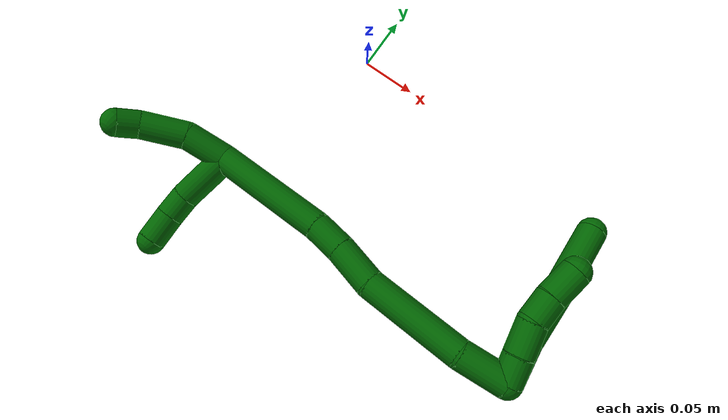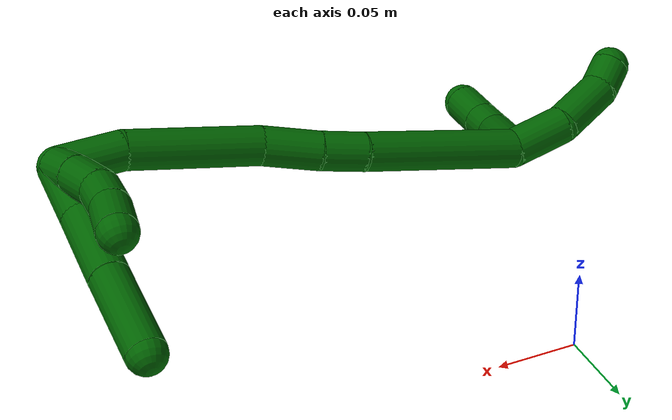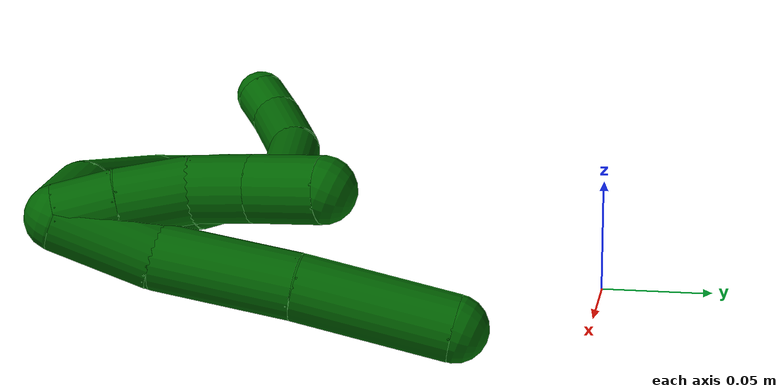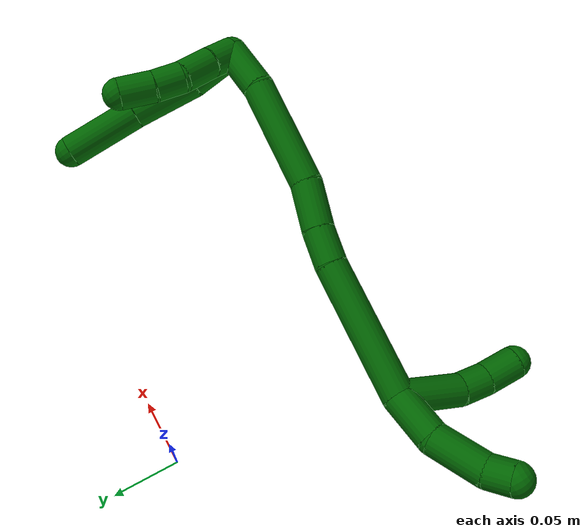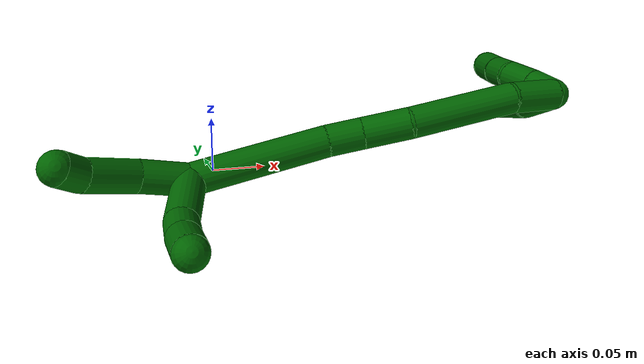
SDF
<sdf version="1.7">
 <world name="default">
  <model name="6">
   <static>0</static>
   <link name="6">
    <collision name="collision-cylinder-e_1_2_8">
     <pose>-0.001593 8.3e-05 -0.019218 -3.13725 -0.082727 3.03672</pose>
     <geometry><cylinder><radius>0.0125</radius><length>0.038568</length></cylinder></geometry>
     <surface>
      <friction><ode><mu>1.16</mu><mu2>1.16</mu2><slip1>0</slip1><slip2>0</slip2></ode></friction>
      <contact><ode><kp>1e+06</kp><kd>1</kd><max_vel>0</max_vel><min_depth>0.001</min_depth></ode></contact>
     </surface>
    </collision>
    <visual name="visual-cylinder-e_1_2_8">
     <pose>-0.001593 8.3e-05 -0.019218 -3.13725 -0.082727 3.03672</pose>
     <geometry><cylinder><radius>0.0125</radius><length>0.038568</length></cylinder></geometry>
     <material><ambient>0 0.392157 0.003922 1</ambient></material>
    </visual>
    <collision name="collision-cylinder-e_2_8_9">
     <pose>-0.00563 0.00544 -0.064148 -2.93931 -0.09281 0.858263</pose>
     <geometry><cylinder><radius>0.0125</radius><length>0.052723</length></cylinder></geometry>
     <surface>
      <friction><ode><mu>1.16</mu><mu2>1.16</mu2><slip1>0</slip1><slip2>0</slip2></ode></friction>
      <contact><ode><kp>1e+06</kp><kd>1</kd><max_vel>0</max_vel><min_depth>0.001</min_depth></ode></contact>
     </surface>
    </collision>
    <visual name="visual-cylinder-e_2_8_9">
     <pose>-0.00563 0.00544 -0.064148 -2.93931 -0.09281 0.858263</pose>
     <geometry><cylinder><radius>0.0125</radius><length>0.052723</length></cylinder></geometry>
     <material><ambient>0 0.392157 0.003922 1</ambient></material>
    </visual>
    <collision name="collision-cylinder-e_3_9_6">
     <pose>-0.011102 0.014815 -0.118769 -3.00067 -0.103375 1.26505</pose>
     <geometry><cylinder><radius>0.0125</radius><length>0.05871</length></cylinder></geometry>
     <surface>
      <friction><ode><mu>1.16</mu><mu2>1.16</mu2><slip1>0</slip1><slip2>0</slip2></ode></friction>
      <contact><ode><kp>1e+06</kp><kd>1</kd><max_vel>0</max_vel><min_depth>0.001</min_depth></ode></contact>
     </surface>
    </collision>
    <visual name="visual-cylinder-e_3_9_6">
     <pose>-0.011102 0.014815 -0.118769 -3.00067 -0.103375 1.26505</pose>
     <geometry><cylinder><radius>0.0125</radius><length>0.05871</length></cylinder></geometry>
     <material><ambient>0 0.392157 0.003922 1</ambient></material>
    </visual>
    <collision name="collision-cylinder-e_1_2_10">
     <pose>-0.004991 0.005079 -0.008864 -2.62126 -0.45442 1.4303</pose>
     <geometry><cylinder><radius>0.0125</radius><length>0.022739</length></cylinder></geometry>
     <surface>
      <friction><ode><mu>1.16</mu><mu2>1.16</mu2><slip1>0</slip1><slip2>0</slip2></ode></friction>
      <contact><ode><kp>1e+06</kp><kd>1</kd><max_vel>0</max_vel><min_depth>0.001</min_depth></ode></contact>
     </surface>
    </collision>
    <visual name="visual-cylinder-e_1_2_10">
     <pose>-0.004991 0.005079 -0.008864 -2.62126 -0.45442 1.4303</pose>
     <geometry><cylinder><radius>0.0125</radius><length>0.022739</length></cylinder></geometry>
     <material><ambient>0 0.392157 0.003922 1</ambient></material>
    </visual>
    <collision name="collision-cylinder-e_2_10_11">
     <pose>-0.015594 0.01554 -0.028879 -2.6919 -0.425603 1.51396</pose>
     <geometry><cylinder><radius>0.0125</radius><length>0.02719</length></cylinder></geometry>
     <surface>
      <friction><ode><mu>1.16</mu><mu2>1.16</mu2><slip1>0</slip1><slip2>0</slip2></ode></friction>
      <contact><ode><kp>1e+06</kp><kd>1</kd><max_vel>0</max_vel><min_depth>0.001</min_depth></ode></contact>
     </surface>
    </collision>
    <visual name="visual-cylinder-e_2_10_11">
     <pose>-0.015594 0.01554 -0.028879 -2.6919 -0.425603 1.51396</pose>
     <geometry><cylinder><radius>0.0125</radius><length>0.02719</length></cylinder></geometry>
     <material><ambient>0 0.392157 0.003922 1</ambient></material>
    </visual>
    <collision name="collision-cylinder-e_3_11_12">
     <pose>-0.022799 0.025631 -0.050281 -2.71108 -0.140171 0.621352</pose>
     <geometry><cylinder><radius>0.0125</radius><length>0.022784</length></cylinder></geometry>
     <surface>
      <friction><ode><mu>1.16</mu><mu2>1.16</mu2><slip1>0</slip1><slip2>0</slip2></ode></friction>
      <contact><ode><kp>1e+06</kp><kd>1</kd><max_vel>0</max_vel><min_depth>0.001</min_depth></ode></contact>
     </surface>
    </collision>
    <visual name="visual-cylinder-e_3_11_12">
     <pose>-0.022799 0.025631 -0.050281 -2.71108 -0.140171 0.621352</pose>
     <geometry><cylinder><radius>0.0125</radius><length>0.022784</length></cylinder></geometry>
     <material><ambient>0 0.392157 0.003922 1</ambient></material>
    </visual>
    <collision name="collision-cylinder-e_4_12_5">
     <pose>-0.02467 0.036536 -0.072683 -2.66995 -0.02049 0.085223</pose>
     <geometry><cylinder><radius>0.0125</radius><length>0.027286</length></cylinder></geometry>
     <surface>
      <friction><ode><mu>1.16</mu><mu2>1.16</mu2><slip1>0</slip1><slip2>0</slip2></ode></friction>
      <contact><ode><kp>1e+06</kp><kd>1</kd><max_vel>0</max_vel><min_depth>0.001</min_depth></ode></contact>
     </surface>
    </collision>
    <visual name="visual-cylinder-e_4_12_5">
     <pose>-0.02467 0.036536 -0.072683 -2.66995 -0.02049 0.085223</pose>
     <geometry><cylinder><radius>0.0125</radius><length>0.027286</length></cylinder></geometry>
     <material><ambient>0 0.392157 0.003922 1</ambient></material>
    </visual>
    <collision name="collision-cylinder-e_1_2_13">
     <pose>-0.018602 -0.008175 0.001947 1.33704 -1.14647 -0.943037</pose>
     <geometry><cylinder><radius>0.0125</radius><length>0.040825</length></cylinder></geometry>
     <surface>
      <friction><ode><mu>1.16</mu><mu2>1.16</mu2><slip1>0</slip1><slip2>0</slip2></ode></friction>
      <contact><ode><kp>1e+06</kp><kd>1</kd><max_vel>0</max_vel><min_depth>0.001</min_depth></ode></contact>
     </surface>
    </collision>
    <visual name="visual-cylinder-e_1_2_13">
     <pose>-0.018602 -0.008175 0.001947 1.33704 -1.14647 -0.943037</pose>
     <geometry><cylinder><radius>0.0125</radius><length>0.040825</length></cylinder></geometry>
     <material><ambient>0 0.392157 0.003922 1</ambient></material>
    </visual>
    <collision name="collision-cylinder-e_2_13_14">
     <pose>-0.074662 -0.038076 0.000139 1.74191 -1.03882 -1.19306</pose>
     <geometry><cylinder><radius>0.0125</radius><length>0.086929</length></cylinder></geometry>
     <surface>
      <friction><ode><mu>1.16</mu><mu2>1.16</mu2><slip1>0</slip1><slip2>0</slip2></ode></friction>
      <contact><ode><kp>1e+06</kp><kd>1</kd><max_vel>0</max_vel><min_depth>0.001</min_depth></ode></contact>
     </surface>
    </collision>
    <visual name="visual-cylinder-e_2_13_14">
     <pose>-0.074662 -0.038076 0.000139 1.74191 -1.03882 -1.19306</pose>
     <geometry><cylinder><radius>0.0125</radius><length>0.086929</length></cylinder></geometry>
     <material><ambient>0 0.392157 0.003922 1</ambient></material>
    </visual>
    <collision name="collision-cylinder-e_3_14_15">
     <pose>-0.128194 -0.067953 -0.008837 2.14051 -1.02865 -1.60325</pose>
     <geometry><cylinder><radius>0.0125</radius><length>0.037529</length></cylinder></geometry>
     <surface>
      <friction><ode><mu>1.16</mu><mu2>1.16</mu2><slip1>0</slip1><slip2>0</slip2></ode></friction>
      <contact><ode><kp>1e+06</kp><kd>1</kd><max_vel>0</max_vel><min_depth>0.001</min_depth></ode></contact>
     </surface>
    </collision>
    <visual name="visual-cylinder-e_3_14_15">
     <pose>-0.128194 -0.067953 -0.008837 2.14051 -1.02865 -1.60325</pose>
     <geometry><cylinder><radius>0.0125</radius><length>0.037529</length></cylinder></geometry>
     <material><ambient>0 0.392157 0.003922 1</ambient></material>
    </visual>
    <collision name="collision-cylinder-e_4_15_16">
     <pose>-0.156622 -0.082618 -0.016672 1.95228 -1.05431 -1.42132</pose>
     <geometry><cylinder><radius>0.0125</radius><length>0.028417</length></cylinder></geometry>
     <surface>
      <friction><ode><mu>1.16</mu><mu2>1.16</mu2><slip1>0</slip1><slip2>0</slip2></ode></friction>
      <contact><ode><kp>1e+06</kp><kd>1</kd><max_vel>0</max_vel><min_depth>0.001</min_depth></ode></contact>
     </surface>
    </collision>
    <visual name="visual-cylinder-e_4_15_16">
     <pose>-0.156622 -0.082618 -0.016672 1.95228 -1.05431 -1.42132</pose>
     <geometry><cylinder><radius>0.0125</radius><length>0.028417</length></cylinder></geometry>
     <material><ambient>0 0.392157 0.003922 1</ambient></material>
    </visual>
    <collision name="collision-cylinder-e_5_16_1">
     <pose>-0.213933 -0.117196 -0.02332 1.71361 -1.0081 -1.13374</pose>
     <geometry><cylinder><radius>0.0125</radius><length>0.1063</length></cylinder></geometry>
     <surface>
      <friction><ode><mu>1.16</mu><mu2>1.16</mu2><slip1>0</slip1><slip2>0</slip2></ode></friction>
      <contact><ode><kp>1e+06</kp><kd>1</kd><max_vel>0</max_vel><min_depth>0.001</min_depth></ode></contact>
     </surface>
    </collision>
    <visual name="visual-cylinder-e_5_16_1">
     <pose>-0.213933 -0.117196 -0.02332 1.71361 -1.0081 -1.13374</pose>
     <geometry><cylinder><radius>0.0125</radius><length>0.1063</length></cylinder></geometry>
     <material><ambient>0 0.392157 0.003922 1</ambient></material>
    </visual>
    <collision name="collision-cylinder-e_1_1_17">
     <pose>-0.258196 -0.162723 -0.009039 0.761509 0.027373 0.010958</pose>
     <geometry><cylinder><radius>0.0125</radius><length>0.050631</length></cylinder></geometry>
     <surface>
      <friction><ode><mu>1.16</mu><mu2>1.16</mu2><slip1>0</slip1><slip2>0</slip2></ode></friction>
      <contact><ode><kp>1e+06</kp><kd>1</kd><max_vel>0</max_vel><min_depth>0.001</min_depth></ode></contact>
     </surface>
    </collision>
    <visual name="visual-cylinder-e_1_1_17">
     <pose>-0.258196 -0.162723 -0.009039 0.761509 0.027373 0.010958</pose>
     <geometry><cylinder><radius>0.0125</radius><length>0.050631</length></cylinder></geometry>
     <material><ambient>0 0.392157 0.003922 1</ambient></material>
    </visual>
    <collision name="collision-cylinder-e_2_17_18">
     <pose>-0.255813 -0.185533 0.018959 0.504746 0.151586 0.03916</pose>
     <geometry><cylinder><radius>0.0125</radius><length>0.022377</length></cylinder></geometry>
     <surface>
      <friction><ode><mu>1.16</mu><mu2>1.16</mu2><slip1>0</slip1><slip2>0</slip2></ode></friction>
      <contact><ode><kp>1e+06</kp><kd>1</kd><max_vel>0</max_vel><min_depth>0.001</min_depth></ode></contact>
     </surface>
    </collision>
    <visual name="visual-cylinder-e_2_17_18">
     <pose>-0.255813 -0.185533 0.018959 0.504746 0.151586 0.03916</pose>
     <geometry><cylinder><radius>0.0125</radius><length>0.022377</length></cylinder></geometry>
     <material><ambient>0 0.392157 0.003922 1</ambient></material>
    </visual>
    <collision name="collision-cylinder-e_3_18_4">
     <pose>-0.251545 -0.195597 0.041019 0.363965 0.192264 0.035486</pose>
     <geometry><cylinder><radius>0.0125</radius><length>0.026992</length></cylinder></geometry>
     <surface>
      <friction><ode><mu>1.16</mu><mu2>1.16</mu2><slip1>0</slip1><slip2>0</slip2></ode></friction>
      <contact><ode><kp>1e+06</kp><kd>1</kd><max_vel>0</max_vel><min_depth>0.001</min_depth></ode></contact>
     </surface>
    </collision>
    <visual name="visual-cylinder-e_3_18_4">
     <pose>-0.251545 -0.195597 0.041019 0.363965 0.192264 0.035486</pose>
     <geometry><cylinder><radius>0.0125</radius><length>0.026992</length></cylinder></geometry>
     <material><ambient>0 0.392157 0.003922 1</ambient></material>
    </visual>
    <collision name="collision-cylinder-e_1_1_19">
     <pose>-0.27714 -0.149744 -0.023842 0.906089 -1.26832 -0.687664</pose>
     <geometry><cylinder><radius>0.0125</radius><length>0.038239</length></cylinder></geometry>
     <surface>
      <friction><ode><mu>1.16</mu><mu2>1.16</mu2><slip1>0</slip1><slip2>0</slip2></ode></friction>
      <contact><ode><kp>1e+06</kp><kd>1</kd><max_vel>0</max_vel><min_depth>0.001</min_depth></ode></contact>
     </surface>
    </collision>
    <visual name="visual-cylinder-e_1_1_19">
     <pose>-0.27714 -0.149744 -0.023842 0.906089 -1.26832 -0.687664</pose>
     <geometry><cylinder><radius>0.0125</radius><length>0.038239</length></cylinder></geometry>
     <material><ambient>0 0.392157 0.003922 1</ambient></material>
    </visual>
    <collision name="collision-cylinder-e_2_19_20">
     <pose>-0.312382 -0.160377 -0.010319 0.55092 -0.965834 -0.294254</pose>
     <geometry><cylinder><radius>0.0125</radius><length>0.041312</length></cylinder></geometry>
     <surface>
      <friction><ode><mu>1.16</mu><mu2>1.16</mu2><slip1>0</slip1><slip2>0</slip2></ode></friction>
      <contact><ode><kp>1e+06</kp><kd>1</kd><max_vel>0</max_vel><min_depth>0.001</min_depth></ode></contact>
     </surface>
    </collision>
    <visual name="visual-cylinder-e_2_19_20">
     <pose>-0.312382 -0.160377 -0.010319 0.55092 -0.965834 -0.294254</pose>
     <geometry><cylinder><radius>0.0125</radius><length>0.041312</length></cylinder></geometry>
     <material><ambient>0 0.392157 0.003922 1</ambient></material>
    </visual>
    <collision name="collision-cylinder-e_3_20_3">
     <pose>-0.336624 -0.167392 0.006845 0.120336 -0.788463 -0.050111</pose>
     <geometry><cylinder><radius>0.0125</radius><length>0.020448</length></cylinder></geometry>
     <surface>
      <friction><ode><mu>1.16</mu><mu2>1.16</mu2><slip1>0</slip1><slip2>0</slip2></ode></friction>
      <contact><ode><kp>1e+06</kp><kd>1</kd><max_vel>0</max_vel><min_depth>0.001</min_depth></ode></contact>
     </surface>
    </collision>
    <visual name="visual-cylinder-e_3_20_3">
     <pose>-0.336624 -0.167392 0.006845 0.120336 -0.788463 -0.050111</pose>
     <geometry><cylinder><radius>0.0125</radius><length>0.020448</length></cylinder></geometry>
     <material><ambient>0 0.392157 0.003922 1</ambient></material>
    </visual>
    <collision name="collision-sphere-3">
     <pose>-0.343876 -0.168257 0.014001 0 -0 0</pose>
     <geometry><sphere><radius>0.0125</radius></sphere></geometry>
     <surface>
      <friction><ode><mu>1.16</mu><mu2>1.16</mu2><slip1>0</slip1><slip2>0</slip2></ode></friction>
      <contact><ode><kp>1e+06</kp><kd>1</kd><max_vel>0</max_vel><min_depth>0.001</min_depth></ode></contact>
     </surface>
    </collision>
    <visual name="visual-sphere-3">
     <pose>-0.343876 -0.168257 0.014001 0 -0 0</pose>
     <geometry><sphere><radius>0.0125</radius></sphere></geometry>
     <material><ambient>0 0.392157 0.003922 1</ambient></material>
    </visual>
    <collision name="collision-sphere-20">
     <pose>-0.329372 -0.166526 -0.00031 0 -0 0</pose>
     <geometry><sphere><radius>0.0125</radius></sphere></geometry>
     <surface>
      <friction><ode><mu>1.16</mu><mu2>1.16</mu2><slip1>0</slip1><slip2>0</slip2></ode></friction>
      <contact><ode><kp>1e+06</kp><kd>1</kd><max_vel>0</max_vel><min_depth>0.001</min_depth></ode></contact>
     </surface>
    </collision>
    <visual name="visual-sphere-20">
     <pose>-0.329372 -0.166526 -0.00031 0 -0 0</pose>
     <geometry><sphere><radius>0.0125</radius></sphere></geometry>
     <material><ambient>0 0.392157 0.003922 1</ambient></material>
    </visual>
    <collision name="collision-sphere-19">
     <pose>-0.295392 -0.154227 -0.020329 0 -0 0</pose>
     <geometry><sphere><radius>0.0125</radius></sphere></geometry>
     <surface>
      <friction><ode><mu>1.16</mu><mu2>1.16</mu2><slip1>0</slip1><slip2>0</slip2></ode></friction>
      <contact><ode><kp>1e+06</kp><kd>1</kd><max_vel>0</max_vel><min_depth>0.001</min_depth></ode></contact>
     </surface>
    </collision>
    <visual name="visual-sphere-19">
     <pose>-0.295392 -0.154227 -0.020329 0 -0 0</pose>
     <geometry><sphere><radius>0.0125</radius></sphere></geometry>
     <material><ambient>0 0.392157 0.003922 1</ambient></material>
    </visual>
    <collision name="collision-sphere-11">
     <pose>-0.021207 0.020923 -0.04003 0 -0 0</pose>
     <geometry><sphere><radius>0.0125</radius></sphere></geometry>
     <surface>
      <friction><ode><mu>1.16</mu><mu2>1.16</mu2><slip1>0</slip1><slip2>0</slip2></ode></friction>
      <contact><ode><kp>1e+06</kp><kd>1</kd><max_vel>0</max_vel><min_depth>0.001</min_depth></ode></contact>
     </surface>
    </collision>
    <visual name="visual-sphere-11">
     <pose>-0.021207 0.020923 -0.04003 0 -0 0</pose>
     <geometry><sphere><radius>0.0125</radius></sphere></geometry>
     <material><ambient>0 0.392157 0.003922 1</ambient></material>
    </visual>
    <collision name="collision-sphere-10">
     <pose>-0.009981 0.010158 -0.017727 0 -0 0</pose>
     <geometry><sphere><radius>0.0125</radius></sphere></geometry>
     <surface>
      <friction><ode><mu>1.16</mu><mu2>1.16</mu2><slip1>0</slip1><slip2>0</slip2></ode></friction>
      <contact><ode><kp>1e+06</kp><kd>1</kd><max_vel>0</max_vel><min_depth>0.001</min_depth></ode></contact>
     </surface>
    </collision>
    <visual name="visual-sphere-10">
     <pose>-0.009981 0.010158 -0.017727 0 -0 0</pose>
     <geometry><sphere><radius>0.0125</radius></sphere></geometry>
     <material><ambient>0 0.392157 0.003922 1</ambient></material>
    </visual>
    <collision name="collision-sphere-6">
     <pose>-0.014131 0.018916 -0.147678 0 -0 0</pose>
     <geometry><sphere><radius>0.0125</radius></sphere></geometry>
     <surface>
      <friction><ode><mu>1.16</mu><mu2>1.16</mu2><slip1>0</slip1><slip2>0</slip2></ode></friction>
      <contact><ode><kp>1e+06</kp><kd>1</kd><max_vel>0</max_vel><min_depth>0.001</min_depth></ode></contact>
     </surface>
    </collision>
    <visual name="visual-sphere-6">
     <pose>-0.014131 0.018916 -0.147678 0 -0 0</pose>
     <geometry><sphere><radius>0.0125</radius></sphere></geometry>
     <material><ambient>0 0.392157 0.003922 1</ambient></material>
    </visual>
    <collision name="collision-sphere-9">
     <pose>-0.008073 0.010714 -0.089861 0 -0 0</pose>
     <geometry><sphere><radius>0.0125</radius></sphere></geometry>
     <surface>
      <friction><ode><mu>1.16</mu><mu2>1.16</mu2><slip1>0</slip1><slip2>0</slip2></ode></friction>
      <contact><ode><kp>1e+06</kp><kd>1</kd><max_vel>0</max_vel><min_depth>0.001</min_depth></ode></contact>
     </surface>
    </collision>
    <visual name="visual-sphere-9">
     <pose>-0.008073 0.010714 -0.089861 0 -0 0</pose>
     <geometry><sphere><radius>0.0125</radius></sphere></geometry>
     <material><ambient>0 0.392157 0.003922 1</ambient></material>
    </visual>
    <collision name="collision-sphere-2">
     <geometry><sphere><radius>0.0125</radius></sphere></geometry>
     <surface>
      <friction><ode><mu>1.16</mu><mu2>1.16</mu2><slip1>0</slip1><slip2>0</slip2></ode></friction>
      <contact><ode><kp>1e+06</kp><kd>1</kd><max_vel>0</max_vel><min_depth>0.001</min_depth></ode></contact>
     </surface>
    </collision>
    <visual name="visual-sphere-2">
     <geometry><sphere><radius>0.0125</radius></sphere></geometry>
     <material><ambient>0 0.392157 0.003922 1</ambient></material>
    </visual>
    <collision name="collision-sphere-8">
     <pose>-0.003187 0.000167 -0.038435 0 -0 0</pose>
     <geometry><sphere><radius>0.0125</radius></sphere></geometry>
     <surface>
      <friction><ode><mu>1.16</mu><mu2>1.16</mu2><slip1>0</slip1><slip2>0</slip2></ode></friction>
      <contact><ode><kp>1e+06</kp><kd>1</kd><max_vel>0</max_vel><min_depth>0.001</min_depth></ode></contact>
     </surface>
    </collision>
    <visual name="visual-sphere-8">
     <pose>-0.003187 0.000167 -0.038435 0 -0 0</pose>
     <geometry><sphere><radius>0.0125</radius></sphere></geometry>
     <material><ambient>0 0.392157 0.003922 1</ambient></material>
    </visual>
    <collision name="collision-sphere-12">
     <pose>-0.02439 0.030338 -0.060532 0 -0 0</pose>
     <geometry><sphere><radius>0.0125</radius></sphere></geometry>
     <surface>
      <friction><ode><mu>1.16</mu><mu2>1.16</mu2><slip1>0</slip1><slip2>0</slip2></ode></friction>
      <contact><ode><kp>1e+06</kp><kd>1</kd><max_vel>0</max_vel><min_depth>0.001</min_depth></ode></contact>
     </surface>
    </collision>
    <visual name="visual-sphere-12">
     <pose>-0.02439 0.030338 -0.060532 0 -0 0</pose>
     <geometry><sphere><radius>0.0125</radius></sphere></geometry>
     <material><ambient>0 0.392157 0.003922 1</ambient></material>
    </visual>
    <collision name="collision-sphere-5">
     <pose>-0.024949 0.042733 -0.084834 0 -0 0</pose>
     <geometry><sphere><radius>0.0125</radius></sphere></geometry>
     <surface>
      <friction><ode><mu>1.16</mu><mu2>1.16</mu2><slip1>0</slip1><slip2>0</slip2></ode></friction>
      <contact><ode><kp>1e+06</kp><kd>1</kd><max_vel>0</max_vel><min_depth>0.001</min_depth></ode></contact>
     </surface>
    </collision>
    <visual name="visual-sphere-5">
     <pose>-0.024949 0.042733 -0.084834 0 -0 0</pose>
     <geometry><sphere><radius>0.0125</radius></sphere></geometry>
     <material><ambient>0 0.392157 0.003922 1</ambient></material>
    </visual>
    <collision name="collision-sphere-13">
     <pose>-0.037204 -0.016351 0.003893 0 -0 0</pose>
     <geometry><sphere><radius>0.0125</radius></sphere></geometry>
     <surface>
      <friction><ode><mu>1.16</mu><mu2>1.16</mu2><slip1>0</slip1><slip2>0</slip2></ode></friction>
      <contact><ode><kp>1e+06</kp><kd>1</kd><max_vel>0</max_vel><min_depth>0.001</min_depth></ode></contact>
     </surface>
    </collision>
    <visual name="visual-sphere-13">
     <pose>-0.037204 -0.016351 0.003893 0 -0 0</pose>
     <geometry><sphere><radius>0.0125</radius></sphere></geometry>
     <material><ambient>0 0.392157 0.003922 1</ambient></material>
    </visual>
    <collision name="collision-sphere-14">
     <pose>-0.11212 -0.059801 -0.003615 0 -0 0</pose>
     <geometry><sphere><radius>0.0125</radius></sphere></geometry>
     <surface>
      <friction><ode><mu>1.16</mu><mu2>1.16</mu2><slip1>0</slip1><slip2>0</slip2></ode></friction>
      <contact><ode><kp>1e+06</kp><kd>1</kd><max_vel>0</max_vel><min_depth>0.001</min_depth></ode></contact>
     </surface>
    </collision>
    <visual name="visual-sphere-14">
     <pose>-0.11212 -0.059801 -0.003615 0 -0 0</pose>
     <geometry><sphere><radius>0.0125</radius></sphere></geometry>
     <material><ambient>0 0.392157 0.003922 1</ambient></material>
    </visual>
    <collision name="collision-sphere-15">
     <pose>-0.144267 -0.076106 -0.01406 0 -0 0</pose>
     <geometry><sphere><radius>0.0125</radius></sphere></geometry>
     <surface>
      <friction><ode><mu>1.16</mu><mu2>1.16</mu2><slip1>0</slip1><slip2>0</slip2></ode></friction>
      <contact><ode><kp>1e+06</kp><kd>1</kd><max_vel>0</max_vel><min_depth>0.001</min_depth></ode></contact>
     </surface>
    </collision>
    <visual name="visual-sphere-15">
     <pose>-0.144267 -0.076106 -0.01406 0 -0 0</pose>
     <geometry><sphere><radius>0.0125</radius></sphere></geometry>
     <material><ambient>0 0.392157 0.003922 1</ambient></material>
    </visual>
    <collision name="collision-sphere-16">
     <pose>-0.168978 -0.089131 -0.019284 0 -0 0</pose>
     <geometry><sphere><radius>0.0125</radius></sphere></geometry>
     <surface>
      <friction><ode><mu>1.16</mu><mu2>1.16</mu2><slip1>0</slip1><slip2>0</slip2></ode></friction>
      <contact><ode><kp>1e+06</kp><kd>1</kd><max_vel>0</max_vel><min_depth>0.001</min_depth></ode></contact>
     </surface>
    </collision>
    <visual name="visual-sphere-16">
     <pose>-0.168978 -0.089131 -0.019284 0 -0 0</pose>
     <geometry><sphere><radius>0.0125</radius></sphere></geometry>
     <material><ambient>0 0.392157 0.003922 1</ambient></material>
    </visual>
    <collision name="collision-sphere-1">
     <pose>-0.258889 -0.145261 -0.027355 0 -0 0</pose>
     <geometry><sphere><radius>0.0125</radius></sphere></geometry>
     <surface>
      <friction><ode><mu>1.16</mu><mu2>1.16</mu2><slip1>0</slip1><slip2>0</slip2></ode></friction>
      <contact><ode><kp>1e+06</kp><kd>1</kd><max_vel>0</max_vel><min_depth>0.001</min_depth></ode></contact>
     </surface>
    </collision>
    <visual name="visual-sphere-1">
     <pose>-0.258889 -0.145261 -0.027355 0 -0 0</pose>
     <geometry><sphere><radius>0.0125</radius></sphere></geometry>
     <material><ambient>0 0.392157 0.003922 1</ambient></material>
    </visual>
    <collision name="collision-sphere-18">
     <pose>-0.254124 -0.190881 0.028639 0 -0 0</pose>
     <geometry><sphere><radius>0.0125</radius></sphere></geometry>
     <surface>
      <friction><ode><mu>1.16</mu><mu2>1.16</mu2><slip1>0</slip1><slip2>0</slip2></ode></friction>
      <contact><ode><kp>1e+06</kp><kd>1</kd><max_vel>0</max_vel><min_depth>0.001</min_depth></ode></contact>
     </surface>
    </collision>
    <visual name="visual-sphere-18">
     <pose>-0.254124 -0.190881 0.028639 0 -0 0</pose>
     <geometry><sphere><radius>0.0125</radius></sphere></geometry>
     <material><ambient>0 0.392157 0.003922 1</ambient></material>
    </visual>
    <collision name="collision-sphere-17">
     <pose>-0.257503 -0.180184 0.009278 0 -0 0</pose>
     <geometry><sphere><radius>0.0125</radius></sphere></geometry>
     <surface>
      <friction><ode><mu>1.16</mu><mu2>1.16</mu2><slip1>0</slip1><slip2>0</slip2></ode></friction>
      <contact><ode><kp>1e+06</kp><kd>1</kd><max_vel>0</max_vel><min_depth>0.001</min_depth></ode></contact>
     </surface>
    </collision>
    <visual name="visual-sphere-17">
     <pose>-0.257503 -0.180184 0.009278 0 -0 0</pose>
     <geometry><sphere><radius>0.0125</radius></sphere></geometry>
     <material><ambient>0 0.392157 0.003922 1</ambient></material>
    </visual>
    <collision name="collision-sphere-4">
     <pose>-0.248966 -0.200313 0.053398 0 -0 0</pose>
     <geometry><sphere><radius>0.0125</radius></sphere></geometry>
     <surface>
      <friction><ode><mu>1.16</mu><mu2>1.16</mu2><slip1>0</slip1><slip2>0</slip2></ode></friction>
      <contact><ode><kp>1e+06</kp><kd>1</kd><max_vel>0</max_vel><min_depth>0.001</min_depth></ode></contact>
     </surface>
    </collision>
    <visual name="visual-sphere-4">
     <pose>-0.248966 -0.200313 0.053398 0 -0 0</pose>
     <geometry><sphere><radius>0.0125</radius></sphere></geometry>
     <material><ambient>0 0.392157 0.003922 1</ambient></material>
    </visual>
    <inertial>
     <pose>-0.130621 -0.068221 -0.024705 0 -0 0</pose>
     <mass>0.75</mass>
     <inertia><ixx>-7e-06</ixx><ixy>0</ixy><ixz>0</ixz><iyy>8e-05</iyy><iyz>0</iyz><izz>0.000256</izz></inertia>
    </inertial>
   </link>
   <pose>0.248993 -0.178567 0.086572 1.15969 0.333023 -0.187167</pose>
  </model>
 </world>
</sdf>
